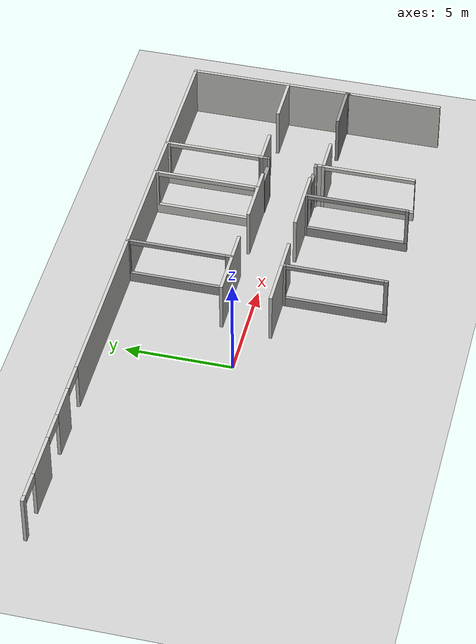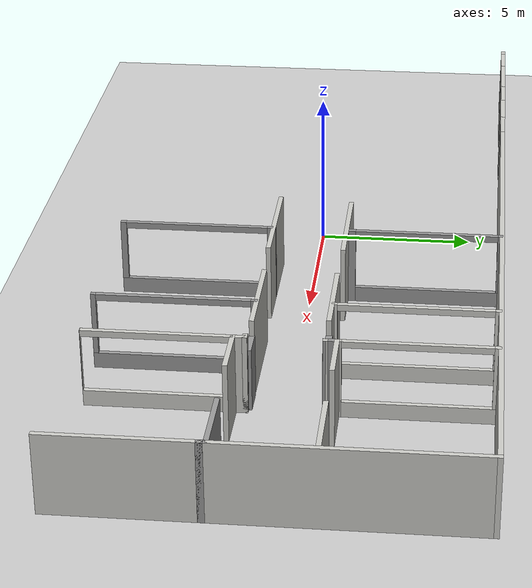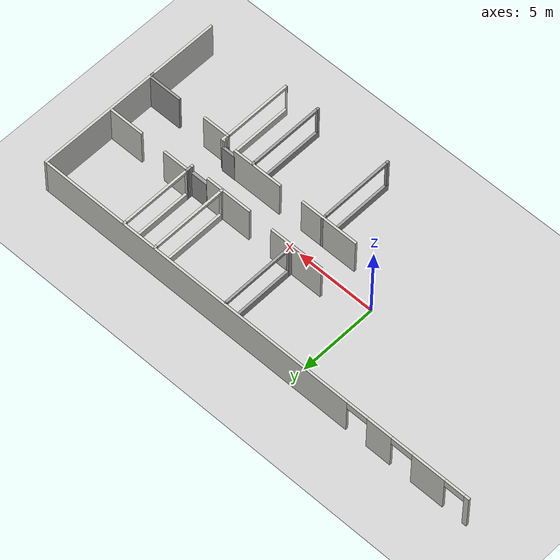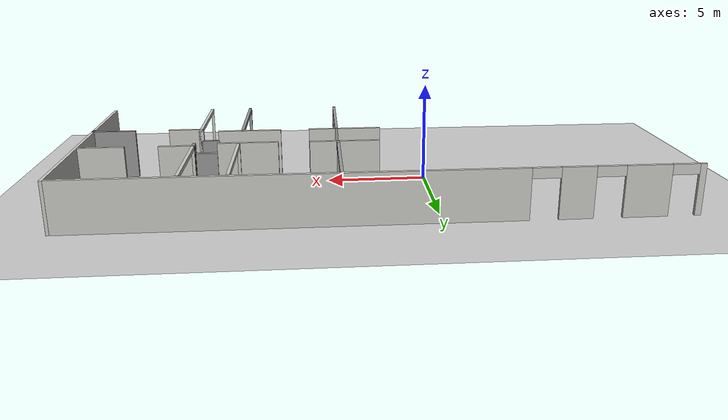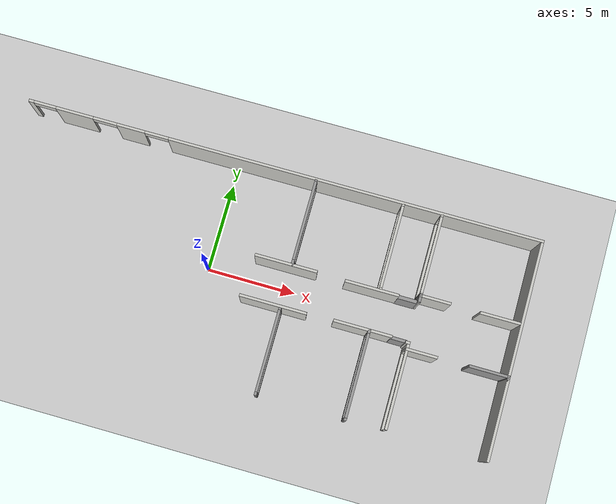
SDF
<sdf version="1.7">
 <world name="default">
  <model name="ground_plane">
   <static>1</static>
   <link name="link">
    <collision name="collision">
     <geometry><plane><normal>0 0 1</normal><size>100 100</size></plane></geometry>
     <surface>
      <contact><collide_bitmask>65535</collide_bitmask></contact>
      <friction><ode><mu>100</mu><mu2>50</mu2></ode></friction>
     </surface>
    </collision>
    <visual name="visual">
     <cast_shadows>0</cast_shadows>
     <geometry><plane><normal>0 0 1</normal><size>100 100</size></plane></geometry>
     <material>
      <script><uri>file://media/materials/scripts/gazebo.material</uri><name>Gazebo/Grey</name></script>
     </material>
    </visual>
   </link>
  </model>
  <model name="Loyola">
   <pose>0.01158 0.01152 0 0 -0 0</pose>
   <link name="Door_12">
    <collision name="Door_12_Collision">
     <geometry><box><size>0.9 0.17 2</size></box></geometry>
     <pose>0 0 1 0 -0 0</pose>
    </collision>
    <visual name="Door_12_Visual">
     <pose>0 0 1 0 -0 0</pose>
     <geometry><box><size>0.9 0.17 2</size></box></geometry>
     <material>
      <script><uri>file://media/materials/scripts/gazebo.material</uri><name>Gazebo/Grey</name></script>
     </material>
    </visual>
    <pose>11.0856 -1.15143 0 0 -0 0</pose>
   </link>
   <link name="Door_13">
    <collision name="Door_13_Collision">
     <geometry><box><size>1.06522 0.2 2</size></box></geometry>
     <pose>0 0 1 0 -0 0</pose>
    </collision>
    <visual name="Door_13_Visual">
     <pose>0 0 1 0 -0 0</pose>
     <geometry><box><size>1.06522 0.2 2</size></box></geometry>
     <material>
      <script><uri>file://media/materials/scripts/gazebo.material</uri><name>Gazebo/Grey</name></script>
     </material>
    </visual>
    <pose>11.0002 1.08329 0 0 -0 0</pose>
   </link>
   <link name="Wall_12">
    <collision name="Wall_12_Collision">
     <geometry><box><size>7.75 0.15 2.5</size></box></geometry>
     <pose>0 0 1.25 0 -0 0</pose>
    </collision>
    <visual name="Wall_12_Visual">
     <pose>0 0 1.25 0 -0 0</pose>
     <geometry><box><size>7.75 0.15 2.5</size></box></geometry>
     <material>
      <script><uri>file://media/materials/scripts/gazebo.material</uri><name>Gazebo/CeilingTiled</name></script>
      <ambient>1 1 1 1</ambient>
     </material>
     <meta><layer>0</layer></meta>
    </visual>
    <pose>17.1864 2.25105 0 0 -0 1.5708</pose>
   </link>
   <link name="Wall_126">
    <collision name="Wall_126_Collision">
     <geometry><box><size>0.15 0.15 2.5</size></box></geometry>
     <pose>0 0 1.25 0 -0 0</pose>
    </collision>
    <visual name="Wall_126_Visual">
     <pose>0 0 1.25 0 -0 0</pose>
     <geometry><box><size>0.15 0.15 2.5</size></box></geometry>
     <material>
      <script><uri>file://media/materials/scripts/gazebo.material</uri><name>Gazebo/CeilingTiled</name></script>
      <ambient>1 1 1 1</ambient>
     </material>
     <meta><layer>0</layer></meta>
    </visual>
    <pose>11.5977 1.07049 0 0 -0 0</pose>
   </link>
   <link name="Wall_13">
    <pose>2.63637 6.05105 0 0 -0 3.14159</pose>
    <visual name="Wall_13_Visual_0">
     <pose>-4.02332 0 1.25 0 -0 0</pose>
     <geometry><box><size>21.2034 0.15 2.5</size></box></geometry>
     <material>
      <script><uri>file://media/materials/scripts/gazebo.material</uri><name>Gazebo/CeilingTiled</name></script>
      <ambient>1 1 1 1</ambient>
     </material>
     <meta><layer>0</layer></meta>
    </visual>
    <collision name="Wall_13_Collision_0">
     <geometry><box><size>21.2034 0.15 2.5</size></box></geometry>
     <pose>-4.02332 0 1.25 0 -0 0</pose>
    </collision>
    <visual name="Wall_13_Visual_1">
     <pose>8.7334 0 1.25 0 -0 0</pose>
     <geometry><box><size>1.61371 0.15 2.5</size></box></geometry>
     <material>
      <script><uri>file://media/materials/scripts/gazebo.material</uri><name>Gazebo/CeilingTiled</name></script>
      <ambient>1 1 1 1</ambient>
     </material>
     <meta><layer>0</layer></meta>
    </visual>
    <collision name="Wall_13_Collision_1">
     <geometry><box><size>1.61371 0.15 2.5</size></box></geometry>
     <pose>8.7334 0 1.25 0 -0 0</pose>
    </collision>
    <visual name="Wall_13_Visual_2">
     <pose>11.9771 0 1.25 0 -0 0</pose>
     <geometry><box><size>2.13835 0.15 2.5</size></box></geometry>
     <material>
      <script><uri>file://media/materials/scripts/gazebo.material</uri><name>Gazebo/CeilingTiled</name></script>
      <ambient>1 1 1 1</ambient>
     </material>
     <meta><layer>0</layer></meta>
    </visual>
    <collision name="Wall_13_Collision_2">
     <geometry><box><size>2.13835 0.15 2.5</size></box></geometry>
     <pose>11.9771 0 1.25 0 -0 0</pose>
    </collision>
    <visual name="Wall_13_Visual_3">
     <pose>14.4717 0 1.25 0 -0 0</pose>
     <geometry><box><size>0.30661 0.15 2.5</size></box></geometry>
     <material>
      <script><uri>file://media/materials/scripts/gazebo.material</uri><name>Gazebo/CeilingTiled</name></script>
      <ambient>1 1 1 1</ambient>
     </material>
     <meta><layer>0</layer></meta>
    </visual>
    <collision name="Wall_13_Collision_3">
     <geometry><box><size>0.30661 0.15 2.5</size></box></geometry>
     <pose>14.4717 0 1.25 0 -0 0</pose>
    </collision>
    <visual name="Wall_13_Visual_4">
     <pose>7.25245 0 2.25 0 -0 0</pose>
     <geometry><box><size>1.34818 0.15 0.5</size></box></geometry>
     <material>
      <script><uri>file://media/materials/scripts/gazebo.material</uri><name>Gazebo/CeilingTiled</name></script>
      <ambient>1 1 1 1</ambient>
     </material>
     <meta><layer>0</layer></meta>
    </visual>
    <collision name="Wall_13_Collision_4">
     <geometry><box><size>1.34818 0.15 0.5</size></box></geometry>
     <pose>7.25245 0 2.25 0 -0 0</pose>
    </collision>
    <visual name="Wall_13_Visual_5">
     <pose>10.2241 0 2.25 0 -0 0</pose>
     <geometry><box><size>1.36767 0.15 0.5</size></box></geometry>
     <material>
      <script><uri>file://media/materials/scripts/gazebo.material</uri><name>Gazebo/CeilingTiled</name></script>
      <ambient>1 1 1 1</ambient>
     </material>
     <meta><layer>0</layer></meta>
    </visual>
    <collision name="Wall_13_Collision_5">
     <geometry><box><size>1.36767 0.15 0.5</size></box></geometry>
     <pose>10.2241 0 2.25 0 -0 0</pose>
    </collision>
    <visual name="Wall_13_Visual_6">
     <pose>13.6823 0 2.25 0 -0 0</pose>
     <geometry><box><size>1.27212 0.15 0.5</size></box></geometry>
     <material>
      <script><uri>file://media/materials/scripts/gazebo.material</uri><name>Gazebo/CeilingTiled</name></script>
      <ambient>1 1 1 1</ambient>
     </material>
     <meta><layer>0</layer></meta>
    </visual>
    <collision name="Wall_13_Collision_6">
     <geometry><box><size>1.27212 0.15 0.5</size></box></geometry>
     <pose>13.6823 0 2.25 0 -0 0</pose>
    </collision>
   </link>
   <link name="Wall_132">
    <collision name="Wall_132_Collision">
     <geometry><box><size>1.75 0.15 2.5</size></box></geometry>
     <pose>0 0 1.25 0 -0 0</pose>
    </collision>
    <visual name="Wall_132_Visual">
     <pose>0 0 1.25 0 -0 0</pose>
     <geometry><box><size>1.75 0.15 2.5</size></box></geometry>
     <material>
      <script><uri>file://media/materials/scripts/gazebo.material</uri><name>Gazebo/CeilingTiled</name></script>
      <ambient>1 1 1 1</ambient>
     </material>
     <meta><layer>0</layer></meta>
    </visual>
    <pose>12.3958 1.40203 0 0 -0 3.14159</pose>
   </link>
   <link name="Wall_134">
    <collision name="Wall_134_Collision">
     <geometry><box><size>0.15 0.15 2.5</size></box></geometry>
     <pose>0 0 1.25 0 -0 0</pose>
    </collision>
    <visual name="Wall_134_Visual">
     <pose>0 0 1.25 0 -0 0</pose>
     <geometry><box><size>0.15 0.15 2.5</size></box></geometry>
     <material>
      <script><uri>file://media/materials/scripts/gazebo.material</uri><name>Gazebo/Grey</name></script>
      <ambient>1 1 1 1</ambient>
     </material>
     <meta><layer>0</layer></meta>
    </visual>
    <pose>11.5977 1.07049 0 0 -0 0</pose>
   </link>
   <link name="Wall_136">
    <collision name="Wall_136_Collision">
     <geometry><box><size>0.48154 0.15 2.5</size></box></geometry>
     <pose>0 0 1.25 0 -0 0</pose>
    </collision>
    <visual name="Wall_136_Visual">
     <pose>0 0 1.25 0 -0 0</pose>
     <geometry><box><size>0.48154 0.15 2.5</size></box></geometry>
     <material>
      <script><uri>file://media/materials/scripts/gazebo.material</uri><name>Gazebo/Grey</name></script>
      <ambient>1 1 1 1</ambient>
     </material>
     <meta><layer>0</layer></meta>
    </visual>
    <pose>11.5968 1.23626 0 0 -0 -1.56493</pose>
   </link>
   <link name="Wall_140">
    <pose>4.5175 -3.63037 0 0 -0 -1.5708</pose>
    <visual name="Wall_140_Visual_0">
     <pose>-2.36498 0 1.25 0 -0 0</pose>
     <geometry><box><size>0.270042 0.15 2.5</size></box></geometry>
     <material>
      <script><uri>file://media/materials/scripts/gazebo.material</uri><name>Gazebo/Grey</name></script>
      <ambient>1 1 1 1</ambient>
     </material>
     <meta><layer>0</layer></meta>
    </visual>
    <collision name="Wall_140_Collision_0">
     <geometry><box><size>0.270042 0.15 2.5</size></box></geometry>
     <pose>-2.36498 0 1.25 0 -0 0</pose>
    </collision>
    <visual name="Wall_140_Visual_1">
     <pose>0.135021 0 0.25 0 -0 0</pose>
     <geometry><box><size>4.72996 0.15 0.5</size></box></geometry>
     <material>
      <script><uri>file://media/materials/scripts/gazebo.material</uri><name>Gazebo/Grey</name></script>
      <ambient>1 1 1 1</ambient>
     </material>
     <meta><layer>0</layer></meta>
    </visual>
    <collision name="Wall_140_Collision_1">
     <geometry><box><size>4.72996 0.15 0.5</size></box></geometry>
     <pose>0.135021 0 0.25 0 -0 0</pose>
    </collision>
    <visual name="Wall_140_Visual_2">
     <pose>2.40552 0 1.5 0 -0 0</pose>
     <geometry><box><size>0.188958 0.15 2</size></box></geometry>
     <material>
      <script><uri>file://media/materials/scripts/gazebo.material</uri><name>Gazebo/Grey</name></script>
      <ambient>1 1 1 1</ambient>
     </material>
     <meta><layer>0</layer></meta>
    </visual>
    <collision name="Wall_140_Collision_2">
     <geometry><box><size>0.188958 0.15 2</size></box></geometry>
     <pose>2.40552 0 1.5 0 -0 0</pose>
    </collision>
    <visual name="Wall_140_Visual_3">
     <pose>0.040542 0 2.4 0 -0 0</pose>
     <geometry><box><size>4.541 0.15 0.2</size></box></geometry>
     <material>
      <script><uri>file://media/materials/scripts/gazebo.material</uri><name>Gazebo/Grey</name></script>
      <ambient>1 1 1 1</ambient>
     </material>
     <meta><layer>0</layer></meta>
    </visual>
    <collision name="Wall_140_Collision_3">
     <geometry><box><size>4.541 0.15 0.2</size></box></geometry>
     <pose>0.040542 0 2.4 0 -0 0</pose>
    </collision>
   </link>
   <link name="Wall_143">
    <pose>9.43238 -3.62443 0 0 -0 -1.5708</pose>
    <visual name="Wall_143_Visual_0">
     <pose>-2.39953 0 1.25 0 -0 0</pose>
     <geometry><box><size>0.200941 0.15 2.5</size></box></geometry>
     <material>
      <script><uri>file://media/materials/scripts/gazebo.material</uri><name>Gazebo/Grey</name></script>
      <ambient>1 1 1 1</ambient>
     </material>
     <meta><layer>0</layer></meta>
    </visual>
    <collision name="Wall_143_Collision_0">
     <geometry><box><size>0.200941 0.15 2.5</size></box></geometry>
     <pose>-2.39953 0 1.25 0 -0 0</pose>
    </collision>
    <visual name="Wall_143_Visual_1">
     <pose>0.10047 0 0.25 0 -0 0</pose>
     <geometry><box><size>4.79906 0.15 0.5</size></box></geometry>
     <material>
      <script><uri>file://media/materials/scripts/gazebo.material</uri><name>Gazebo/Grey</name></script>
      <ambient>1 1 1 1</ambient>
     </material>
     <meta><layer>0</layer></meta>
    </visual>
    <collision name="Wall_143_Collision_1">
     <geometry><box><size>4.79906 0.15 0.5</size></box></geometry>
     <pose>0.10047 0 0.25 0 -0 0</pose>
    </collision>
    <visual name="Wall_143_Visual_2">
     <pose>2.42347 0 1.5 0 -0 0</pose>
     <geometry><box><size>0.153059 0.15 2</size></box></geometry>
     <material>
      <script><uri>file://media/materials/scripts/gazebo.material</uri><name>Gazebo/Grey</name></script>
      <ambient>1 1 1 1</ambient>
     </material>
     <meta><layer>0</layer></meta>
    </visual>
    <collision name="Wall_143_Collision_2">
     <geometry><box><size>0.153059 0.15 2</size></box></geometry>
     <pose>2.42347 0 1.5 0 -0 0</pose>
    </collision>
    <visual name="Wall_143_Visual_3">
     <pose>0.023941 0 2.4 0 -0 0</pose>
     <geometry><box><size>4.646 0.15 0.2</size></box></geometry>
     <material>
      <script><uri>file://media/materials/scripts/gazebo.material</uri><name>Gazebo/Grey</name></script>
      <ambient>1 1 1 1</ambient>
     </material>
     <meta><layer>0</layer></meta>
    </visual>
    <collision name="Wall_143_Collision_3">
     <geometry><box><size>4.646 0.15 0.2</size></box></geometry>
     <pose>0.023941 0 2.4 0 -0 0</pose>
    </collision>
   </link>
   <link name="Wall_145">
    <pose>11.6228 -3.76099 0 0 -0 -1.5708</pose>
    <visual name="Wall_145_Visual_0">
     <pose>-2.18309 0 1.25 0 -0 0</pose>
     <geometry><box><size>0.133827 0.15 2.5</size></box></geometry>
     <material>
      <script><uri>file://media/materials/scripts/gazebo.material</uri><name>Gazebo/CeilingTiled</name></script>
      <ambient>1 1 1 1</ambient>
     </material>
     <meta><layer>0</layer></meta>
    </visual>
    <collision name="Wall_145_Collision_0">
     <geometry><box><size>0.133827 0.15 2.5</size></box></geometry>
     <pose>-2.18309 0 1.25 0 -0 0</pose>
    </collision>
    <visual name="Wall_145_Visual_1">
     <pose>0.066914 0 0.25 0 -0 0</pose>
     <geometry><box><size>4.36617 0.15 0.5</size></box></geometry>
     <material>
      <script><uri>file://media/materials/scripts/gazebo.material</uri><name>Gazebo/CeilingTiled</name></script>
      <ambient>1 1 1 1</ambient>
     </material>
     <meta><layer>0</layer></meta>
    </visual>
    <collision name="Wall_145_Collision_1">
     <geometry><box><size>4.36617 0.15 0.5</size></box></geometry>
     <pose>0.066914 0 0.25 0 -0 0</pose>
    </collision>
    <visual name="Wall_145_Visual_2">
     <pose>2.24391 0 1.5 0 -0 0</pose>
     <geometry><box><size>0.012173 0.15 2</size></box></geometry>
     <material>
      <script><uri>file://media/materials/scripts/gazebo.material</uri><name>Gazebo/CeilingTiled</name></script>
      <ambient>1 1 1 1</ambient>
     </material>
     <meta><layer>0</layer></meta>
    </visual>
    <collision name="Wall_145_Collision_2">
     <geometry><box><size>0.012173 0.15 2</size></box></geometry>
     <pose>2.24391 0 1.5 0 -0 0</pose>
    </collision>
    <visual name="Wall_145_Visual_3">
     <pose>0.060827 0 2.4 0 -0 0</pose>
     <geometry><box><size>4.354 0.15 0.2</size></box></geometry>
     <material>
      <script><uri>file://media/materials/scripts/gazebo.material</uri><name>Gazebo/CeilingTiled</name></script>
      <ambient>1 1 1 1</ambient>
     </material>
     <meta><layer>0</layer></meta>
    </visual>
    <collision name="Wall_145_Collision_3">
     <geometry><box><size>4.354 0.15 0.2</size></box></geometry>
     <pose>0.060827 0 2.4 0 -0 0</pose>
    </collision>
   </link>
   <link name="Wall_147">
    <pose>11.5958 3.70203 0 0 -0 1.5708</pose>
    <visual name="Wall_147_Visual_0">
     <pose>-2.27227 0 1.25 0 -0 0</pose>
     <geometry><box><size>0.205451 0.15 2.5</size></box></geometry>
     <material>
      <script><uri>file://media/materials/scripts/gazebo.material</uri><name>Gazebo/CeilingTiled</name></script>
      <ambient>1 1 1 1</ambient>
     </material>
     <meta><layer>0</layer></meta>
    </visual>
    <collision name="Wall_147_Collision_0">
     <geometry><box><size>0.205451 0.15 2.5</size></box></geometry>
     <pose>-2.27227 0 1.25 0 -0 0</pose>
    </collision>
    <visual name="Wall_147_Visual_1">
     <pose>0.102726 0 0.25 0 -0 0</pose>
     <geometry><box><size>4.54455 0.15 0.5</size></box></geometry>
     <material>
      <script><uri>file://media/materials/scripts/gazebo.material</uri><name>Gazebo/CeilingTiled</name></script>
      <ambient>1 1 1 1</ambient>
     </material>
     <meta><layer>0</layer></meta>
    </visual>
    <collision name="Wall_147_Collision_1">
     <geometry><box><size>4.54455 0.15 0.5</size></box></geometry>
     <pose>0.102726 0 0.25 0 -0 0</pose>
    </collision>
    <visual name="Wall_147_Visual_2">
     <pose>2.27273 0 1.5 0 -0 0</pose>
     <geometry><box><size>0.204549 0.15 2</size></box></geometry>
     <material>
      <script><uri>file://media/materials/scripts/gazebo.material</uri><name>Gazebo/CeilingTiled</name></script>
      <ambient>1 1 1 1</ambient>
     </material>
     <meta><layer>0</layer></meta>
    </visual>
    <collision name="Wall_147_Collision_2">
     <geometry><box><size>0.204549 0.15 2</size></box></geometry>
     <pose>2.27273 0 1.5 0 -0 0</pose>
    </collision>
    <visual name="Wall_147_Visual_3">
     <pose>0.000451 0 2.4 0 -0 0</pose>
     <geometry><box><size>4.34 0.15 0.2</size></box></geometry>
     <material>
      <script><uri>file://media/materials/scripts/gazebo.material</uri><name>Gazebo/CeilingTiled</name></script>
      <ambient>1 1 1 1</ambient>
     </material>
     <meta><layer>0</layer></meta>
    </visual>
    <collision name="Wall_147_Collision_3">
     <geometry><box><size>4.34 0.15 0.2</size></box></geometry>
     <pose>0.000451 0 2.4 0 -0 0</pose>
    </collision>
   </link>
   <link name="Wall_149">
    <pose>9.42159 3.57138 0 0 -0 1.5708</pose>
    <visual name="Wall_149_Visual_0">
     <pose>-2.41537 0 1.25 0 -0 0</pose>
     <geometry><box><size>0.169253 0.15 2.5</size></box></geometry>
     <material>
      <script><uri>file://media/materials/scripts/gazebo.material</uri><name>Gazebo/CeilingTiled</name></script>
      <ambient>1 1 1 1</ambient>
     </material>
     <meta><layer>0</layer></meta>
    </visual>
    <collision name="Wall_149_Collision_0">
     <geometry><box><size>0.169253 0.15 2.5</size></box></geometry>
     <pose>-2.41537 0 1.25 0 -0 0</pose>
    </collision>
    <visual name="Wall_149_Visual_1">
     <pose>0.084626 0 0.25 0 -0 0</pose>
     <geometry><box><size>4.83075 0.15 0.5</size></box></geometry>
     <material>
      <script><uri>file://media/materials/scripts/gazebo.material</uri><name>Gazebo/CeilingTiled</name></script>
      <ambient>1 1 1 1</ambient>
     </material>
     <meta><layer>0</layer></meta>
    </visual>
    <collision name="Wall_149_Collision_1">
     <geometry><box><size>4.83075 0.15 0.5</size></box></geometry>
     <pose>0.084626 0 0.25 0 -0 0</pose>
    </collision>
    <visual name="Wall_149_Visual_2">
     <pose>2.40163 0 1.5 0 -0 0</pose>
     <geometry><box><size>0.196747 0.15 2</size></box></geometry>
     <material>
      <script><uri>file://media/materials/scripts/gazebo.material</uri><name>Gazebo/CeilingTiled</name></script>
      <ambient>1 1 1 1</ambient>
     </material>
     <meta><layer>0</layer></meta>
    </visual>
    <collision name="Wall_149_Collision_2">
     <geometry><box><size>0.196747 0.15 2</size></box></geometry>
     <pose>2.40163 0 1.5 0 -0 0</pose>
    </collision>
    <visual name="Wall_149_Visual_3">
     <pose>-0.013747 0 2.4 0 -0 0</pose>
     <geometry><box><size>4.634 0.15 0.2</size></box></geometry>
     <material>
      <script><uri>file://media/materials/scripts/gazebo.material</uri><name>Gazebo/CeilingTiled</name></script>
      <ambient>1 1 1 1</ambient>
     </material>
     <meta><layer>0</layer></meta>
    </visual>
    <collision name="Wall_149_Collision_3">
     <geometry><box><size>4.634 0.15 0.2</size></box></geometry>
     <pose>-0.013747 0 2.4 0 -0 0</pose>
    </collision>
   </link>
   <link name="Wall_151">
    <pose>4.49684 3.58842 0 0 -0 1.5708</pose>
    <visual name="Wall_151_Visual_0">
     <pose>-2.33025 0 1.25 0 -0 0</pose>
     <geometry><box><size>0.339497 0.15 2.5</size></box></geometry>
     <material>
      <script><uri>file://media/materials/scripts/gazebo.material</uri><name>Gazebo/Grey</name></script>
      <ambient>1 1 1 1</ambient>
     </material>
     <meta><layer>0</layer></meta>
    </visual>
    <collision name="Wall_151_Collision_0">
     <geometry><box><size>0.339497 0.15 2.5</size></box></geometry>
     <pose>-2.33025 0 1.25 0 -0 0</pose>
    </collision>
    <visual name="Wall_151_Visual_1">
     <pose>0.169748 0 0.25 0 -0 0</pose>
     <geometry><box><size>4.6605 0.15 0.5</size></box></geometry>
     <material>
      <script><uri>file://media/materials/scripts/gazebo.material</uri><name>Gazebo/Grey</name></script>
      <ambient>1 1 1 1</ambient>
     </material>
     <meta><layer>0</layer></meta>
    </visual>
    <collision name="Wall_151_Collision_1">
     <geometry><box><size>4.6605 0.15 0.5</size></box></geometry>
     <pose>0.169748 0 0.25 0 -0 0</pose>
    </collision>
    <visual name="Wall_151_Visual_2">
     <pose>2.41875 0 1.5 0 -0 0</pose>
     <geometry><box><size>0.162503 0.15 2</size></box></geometry>
     <material>
      <script><uri>file://media/materials/scripts/gazebo.material</uri><name>Gazebo/Grey</name></script>
      <ambient>1 1 1 1</ambient>
     </material>
     <meta><layer>0</layer></meta>
    </visual>
    <collision name="Wall_151_Collision_2">
     <geometry><box><size>0.162503 0.15 2</size></box></geometry>
     <pose>2.41875 0 1.5 0 -0 0</pose>
    </collision>
    <visual name="Wall_151_Visual_3">
     <pose>0.088497 0 2.4 0 -0 0</pose>
     <geometry><box><size>4.498 0.15 0.2</size></box></geometry>
     <material>
      <script><uri>file://media/materials/scripts/gazebo.material</uri><name>Gazebo/Grey</name></script>
      <ambient>1 1 1 1</ambient>
     </material>
     <meta><layer>0</layer></meta>
    </visual>
    <collision name="Wall_151_Collision_3">
     <geometry><box><size>4.498 0.15 0.2</size></box></geometry>
     <pose>0.088497 0 2.4 0 -0 0</pose>
    </collision>
   </link>
   <link name="Wall_4">
    <collision name="Wall_4_Collision">
     <geometry><box><size>4.5 0.15 2.5</size></box></geometry>
     <pose>0 0 1.25 0 -0 0</pose>
    </collision>
    <visual name="Wall_4_Visual">
     <pose>0 0 1.25 0 -0 0</pose>
     <geometry><box><size>4.5 0.15 2.5</size></box></geometry>
     <material>
      <script><uri>file://media/materials/scripts/gazebo.material</uri><name>Gazebo/CeilingTiled</name></script>
      <ambient>1 1 1 1</ambient>
     </material>
     <meta><layer>0</layer></meta>
    </visual>
    <pose>17.1864 -3.92395 0 0 -0 1.5708</pose>
   </link>
   <link name="Wall_43">
    <collision name="Wall_43_Collision">
     <geometry><box><size>3.5 0.15 2.5</size></box></geometry>
     <pose>0 0 1.25 0 -0 0</pose>
    </collision>
    <visual name="Wall_43_Visual">
     <pose>0 0 1.25 0 -0 0</pose>
     <geometry><box><size>3.5 0.15 2.5</size></box></geometry>
     <material>
      <script><uri>file://media/materials/scripts/gazebo.material</uri><name>Gazebo/CeilingTiled</name></script>
      <ambient>1 1 1 1</ambient>
     </material>
     <meta><layer>0</layer></meta>
    </visual>
    <pose>4.16705 1.12725 0 0 -0 0</pose>
   </link>
   <link name="Wall_45">
    <collision name="Wall_45_Collision">
     <geometry><box><size>3 0.15 2.5</size></box></geometry>
     <pose>0 0 1.25 0 -0 0</pose>
    </collision>
    <visual name="Wall_45_Visual">
     <pose>0 0 1.25 0 -0 0</pose>
     <geometry><box><size>3 0.15 2.5</size></box></geometry>
     <material>
      <script><uri>file://media/materials/scripts/gazebo.material</uri><name>Gazebo/CeilingTiled</name></script>
      <ambient>1 1 1 1</ambient>
     </material>
     <meta><layer>0</layer></meta>
    </visual>
    <pose>8.97351 1.07848 0 0 -0 0</pose>
   </link>
   <link name="Wall_5">
    <collision name="Wall_5_Collision">
     <geometry><box><size>0.15 0.15 2.5</size></box></geometry>
     <pose>0 0 1.25 0 -0 0</pose>
    </collision>
    <visual name="Wall_5_Visual">
     <pose>0 0 1.25 0 -0 0</pose>
     <geometry><box><size>0.15 0.15 2.5</size></box></geometry>
     <material>
      <script><uri>file://media/materials/scripts/gazebo.material</uri><name>Gazebo/Grey</name></script>
      <ambient>1 1 1 1</ambient>
     </material>
     <meta><layer>0</layer></meta>
    </visual>
    <pose>17.1864 -1.74895 0 0 -0 0</pose>
   </link>
   <link name="Wall_50">
    <collision name="Wall_50_Collision">
     <geometry><box><size>2.25 0.15 2.5</size></box></geometry>
     <pose>0 0 1.25 0 -0 0</pose>
    </collision>
    <visual name="Wall_50_Visual">
     <pose>0 0 1.25 0 -0 0</pose>
     <geometry><box><size>2.25 0.15 2.5</size></box></geometry>
     <material>
      <script><uri>file://media/materials/scripts/gazebo.material</uri><name>Gazebo/CeilingTiled</name></script>
      <ambient>1 1 1 1</ambient>
     </material>
     <meta><layer>0</layer></meta>
    </visual>
    <pose>16.0128 1.37401 0 0 -0 0</pose>
   </link>
   <link name="Wall_52">
    <collision name="Wall_52_Collision">
     <geometry><box><size>1.75 0.15 2.5</size></box></geometry>
     <pose>0 0 1.25 0 -0 0</pose>
    </collision>
    <visual name="Wall_52_Visual">
     <pose>0 0 1.25 0 -0 0</pose>
     <geometry><box><size>1.75 0.15 2.5</size></box></geometry>
     <material>
      <script><uri>file://media/materials/scripts/gazebo.material</uri><name>Gazebo/CeilingTiled</name></script>
      <ambient>1 1 1 1</ambient>
     </material>
     <meta><layer>0</layer></meta>
    </visual>
    <pose>12.4228 -1.58599 0 0 -0 3.14159</pose>
   </link>
   <link name="Wall_53">
    <collision name="Wall_53_Collision">
     <geometry><box><size>0.5 0.15 2.5</size></box></geometry>
     <pose>0 0 1.25 0 -0 0</pose>
    </collision>
    <visual name="Wall_53_Visual">
     <pose>0 0 1.25 0 -0 0</pose>
     <geometry><box><size>0.5 0.15 2.5</size></box></geometry>
     <material>
      <script><uri>file://media/materials/scripts/gazebo.material</uri><name>Gazebo/CeilingTiled</name></script>
      <ambient>1 1 1 1</ambient>
     </material>
     <meta><layer>0</layer></meta>
    </visual>
    <pose>11.6228 -1.41099 0 0 -0 1.5708</pose>
   </link>
   <link name="Wall_54">
    <collision name="Wall_54_Collision">
     <geometry><box><size>0.25 0.15 2.5</size></box></geometry>
     <pose>0 0 1.25 0 -0 0</pose>
    </collision>
    <visual name="Wall_54_Visual">
     <pose>0 0 1.25 0 -0 0</pose>
     <geometry><box><size>0.25 0.15 2.5</size></box></geometry>
     <material>
      <script><uri>file://media/materials/scripts/gazebo.material</uri><name>Gazebo/CeilingTiled</name></script>
      <ambient>1 1 1 1</ambient>
     </material>
     <meta><layer>0</layer></meta>
    </visual>
    <pose>11.5728 -1.23599 0 0 -0 3.14159</pose>
   </link>
   <link name="Wall_56">
    <collision name="Wall_56_Collision">
     <geometry><box><size>3.25 0.15 2.5</size></box></geometry>
     <pose>0 0 1.25 0 -0 0</pose>
    </collision>
    <visual name="Wall_56_Visual">
     <pose>0 0 1.25 0 -0 0</pose>
     <geometry><box><size>3.25 0.15 2.5</size></box></geometry>
     <material>
      <script><uri>file://media/materials/scripts/gazebo.material</uri><name>Gazebo/CeilingTiled</name></script>
      <ambient>1 1 1 1</ambient>
     </material>
     <meta><layer>0</layer></meta>
    </visual>
    <pose>9.0661 -1.1549 0 0 -0 3.14159</pose>
   </link>
   <link name="Wall_58">
    <collision name="Wall_58_Collision">
     <geometry><box><size>3.75 0.15 2.5</size></box></geometry>
     <pose>0 0 1.25 0 -0 0</pose>
    </collision>
    <visual name="Wall_58_Visual">
     <pose>0 0 1.25 0 -0 0</pose>
     <geometry><box><size>3.75 0.15 2.5</size></box></geometry>
     <material>
      <script><uri>file://media/materials/scripts/gazebo.material</uri><name>Gazebo/CeilingTiled</name></script>
      <ambient>1 1 1 1</ambient>
     </material>
     <meta><layer>0</layer></meta>
    </visual>
    <pose>4.09478 -1.2078 0 0 -0 3.14159</pose>
   </link>
   <link name="Wall_6">
    <collision name="Wall_6_Collision">
     <geometry><box><size>0.25 0.15 2.5</size></box></geometry>
     <pose>0 0 1.25 0 -0 0</pose>
    </collision>
    <visual name="Wall_6_Visual">
     <pose>0 0 1.25 0 -0 0</pose>
     <geometry><box><size>0.25 0.15 2.5</size></box></geometry>
     <material>
      <script><uri>file://media/materials/scripts/gazebo.material</uri><name>Gazebo/Grey</name></script>
      <ambient>1 1 1 1</ambient>
     </material>
     <meta><layer>0</layer></meta>
    </visual>
    <pose>17.1864 -1.69895 0 0 -0 1.5708</pose>
   </link>
   <link name="Wall_7">
    <collision name="Wall_7_Collision">
     <geometry><box><size>0.25 0.15 2.5</size></box></geometry>
     <pose>0 0 1.25 0 -0 0</pose>
    </collision>
    <visual name="Wall_7_Visual">
     <pose>0 0 1.25 0 -0 0</pose>
     <geometry><box><size>0.25 0.15 2.5</size></box></geometry>
     <material>
      <script><uri>file://media/materials/scripts/gazebo.material</uri><name>Gazebo/Grey</name></script>
      <ambient>1 1 1 1</ambient>
     </material>
     <meta><layer>0</layer></meta>
    </visual>
    <pose>17.1864 -1.59895 0 0 -0 1.5708</pose>
   </link>
   <link name="Wall_8">
    <collision name="Wall_8_Collision">
     <geometry><box><size>0.15 0.15 2.5</size></box></geometry>
     <pose>0 0 1.25 0 -0 0</pose>
    </collision>
    <visual name="Wall_8_Visual">
     <pose>0 0 1.25 0 -0 0</pose>
     <geometry><box><size>0.15 0.15 2.5</size></box></geometry>
     <material>
      <script><uri>file://media/materials/scripts/gazebo.material</uri><name>Gazebo/Grey</name></script>
      <ambient>1 1 1 1</ambient>
     </material>
     <meta><layer>0</layer></meta>
    </visual>
    <pose>17.1864 -1.54895 0 0 -0 0</pose>
   </link>
   <link name="Wall_9">
    <collision name="Wall_9_Collision">
     <geometry><box><size>2.25 0.15 2.5</size></box></geometry>
     <pose>0 0 1.25 0 -0 0</pose>
    </collision>
    <visual name="Wall_9_Visual">
     <pose>0 0 1.25 0 -0 0</pose>
     <geometry><box><size>2.25 0.15 2.5</size></box></geometry>
     <material>
      <script><uri>file://media/materials/scripts/gazebo.material</uri><name>Gazebo/Grey</name></script>
      <ambient>1 1 1 1</ambient>
     </material>
     <meta><layer>0</layer></meta>
    </visual>
    <pose>16.1364 -1.54895 0 0 -0 3.14159</pose>
   </link>
   <static>1</static>
  </model>
 </world>
</sdf>
